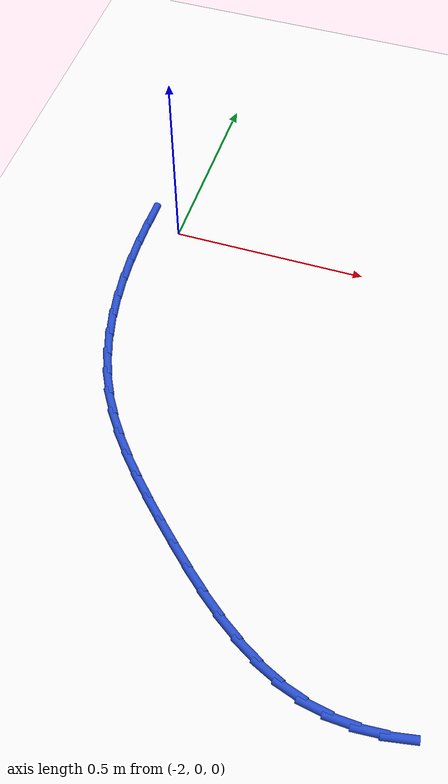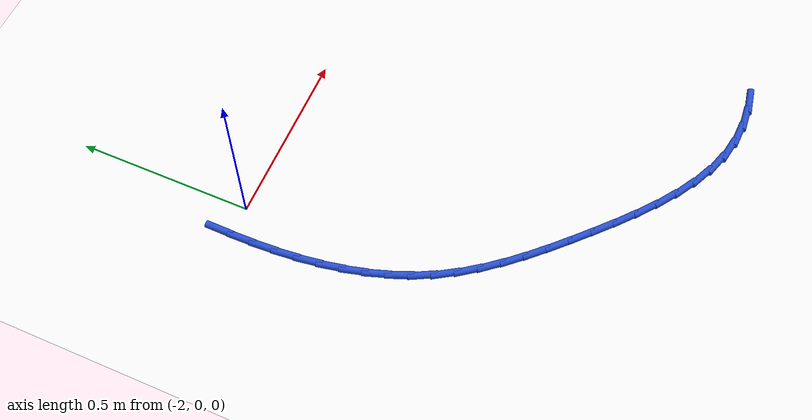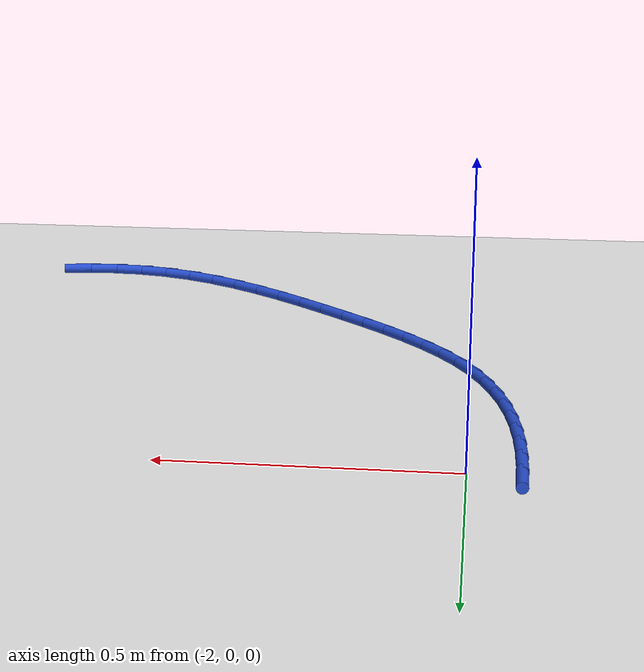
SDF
<sdf version="1.6">
 <world name="default">
  <model name="ground_plane">
   <static>1</static>
   <link name="link">
    <collision name="collision">
     <geometry><plane><normal>0 0 1</normal><size>100 100</size></plane></geometry>
     <surface><friction><ode><mu>100</mu><mu2>50</mu2></ode></friction></surface>
    </collision>
    <visual name="visual">
     <cast_shadows>0</cast_shadows>
     <geometry><plane><normal>0 0 1</normal><size>100 100</size></plane></geometry>
     <material>
      <script><uri>file://media/materials/scripts/gazebo.material</uri><name>Gazebo/WhiteGlow</name></script>
     </material>
    </visual>
   </link>
  </model>
  <model name="line">
   <link name="link_56">
    <pose>-2.0864020378395884 0.03379474475702978 0.01 0 1.57 1.5607957673540584</pose>
    <collision name="collision">
     <geometry><cylinder><radius>0.01</radius><length>0.08</length></cylinder></geometry>
    </collision>
    <visual name="visual">
     <material>
      <script><name>Gazebo/Blue</name><uri>file://media/materials/scripts/gazebo.material</uri></script>
     </material>
     <geometry><cylinder><radius>0.01</radius><length>0.08</length></cylinder></geometry>
    </visual>
   </link>
   <link name="link_57">
    <pose>-2.0870570276213884 -0.03169838591165594 0.01 0 1.57 -1.5506694462130841</pose>
    <collision name="collision">
     <geometry><cylinder><radius>0.01</radius><length>0.08</length></cylinder></geometry>
    </collision>
    <visual name="visual">
     <material>
      <script><name>Gazebo/Blue</name><uri>file://media/materials/scripts/gazebo.material</uri></script>
     </material>
     <geometry><cylinder><radius>0.01</radius><length>0.08</length></cylinder></geometry>
    </visual>
   </link>
   <link name="link_58">
    <pose>-2.085754062503926 -0.09642720305056046 0.01 0 1.57 -1.5149447673506946</pose>
    <collision name="collision">
     <geometry><cylinder><radius>0.01</radius><length>0.08</length></cylinder></geometry>
    </collision>
    <visual name="visual">
     <material>
      <script><name>Gazebo/Blue</name><uri>file://media/materials/scripts/gazebo.material</uri></script>
     </material>
     <geometry><cylinder><radius>0.01</radius><length>0.08</length></cylinder></geometry>
    </visual>
   </link>
   <link name="link_59">
    <pose>-2.082186165023832 -0.16024255302392093 0.01 0 1.57 -1.4732654751292809</pose>
    <collision name="collision">
     <geometry><cylinder><radius>0.01</radius><length>0.08</length></cylinder></geometry>
    </collision>
    <visual name="visual">
     <material>
      <script><name>Gazebo/Blue</name><uri>file://media/materials/scripts/gazebo.material</uri></script>
     </material>
     <geometry><cylinder><radius>0.01</radius><length>0.08</length></cylinder></geometry>
    </visual>
   </link>
   <link name="link_60">
    <pose>-2.076046357717737 -0.22299528219597156 0.01 0 1.57 -1.4252842629435871</pose>
    <collision name="collision">
     <geometry><cylinder><radius>0.01</radius><length>0.08</length></cylinder></geometry>
    </collision>
    <visual name="visual">
     <material>
      <script><name>Gazebo/Blue</name><uri>file://media/materials/scripts/gazebo.material</uri></script>
     </material>
     <geometry><cylinder><radius>0.01</radius><length>0.08</length></cylinder></geometry>
    </visual>
   </link>
   <link name="link_61">
    <pose>-2.0670276631222726 -0.28453623693094965 0.01 0 1.57 -1.3707091175914576</pose>
    <collision name="collision">
     <geometry><cylinder><radius>0.01</radius><length>0.08</length></cylinder></geometry>
    </collision>
    <visual name="visual">
     <material>
      <script><name>Gazebo/Blue</name><uri>file://media/materials/scripts/gazebo.material</uri></script>
     </material>
     <geometry><cylinder><radius>0.01</radius><length>0.08</length></cylinder></geometry>
    </visual>
   </link>
   <link name="link_62">
    <pose>-2.0548231037740696 -0.3447162635930891 0.01 0 1.57 -1.3093653273493706</pose>
    <collision name="collision">
     <geometry><cylinder><radius>0.01</radius><length>0.08</length></cylinder></geometry>
    </collision>
    <visual name="visual">
     <material>
      <script><name>Gazebo/Blue</name><uri>file://media/materials/scripts/gazebo.material</uri></script>
     </material>
     <geometry><cylinder><radius>0.01</radius><length>0.08</length></cylinder></geometry>
    </visual>
   </link>
   <link name="link_63">
    <pose>-2.039125702209758 -0.4033862085466275 0.01 0 1.57 -1.2412730890937522</pose>
    <collision name="collision">
     <geometry><cylinder><radius>0.01</radius><length>0.08</length></cylinder></geometry>
    </collision>
    <visual name="visual">
     <material>
      <script><name>Gazebo/Blue</name><uri>file://media/materials/scripts/gazebo.material</uri></script>
     </material>
     <geometry><cylinder><radius>0.01</radius><length>0.08</length></cylinder></geometry>
    </visual>
   </link>
   <link name="link_64">
    <pose>-2.019628480965971 -0.46039691815579886 0.01 0 1.57 -1.166733083043959</pose>
    <collision name="collision">
     <geometry><cylinder><radius>0.01</radius><length>0.08</length></cylinder></geometry>
    </collision>
    <visual name="visual">
     <material>
      <script><name>Gazebo/Blue</name><uri>file://media/materials/scripts/gazebo.material</uri></script>
     </material>
     <geometry><cylinder><radius>0.01</radius><length>0.08</length></cylinder></geometry>
    </visual>
   </link>
   <link name="link_65">
    <pose>-1.996024462579338 -0.5155992387848396 0.01 0 1.57 -1.0864331989604739</pose>
    <collision name="collision">
     <geometry><cylinder><radius>0.01</radius><length>0.08</length></cylinder></geometry>
    </collision>
    <visual name="visual">
     <material>
      <script><name>Gazebo/Blue</name><uri>file://media/materials/scripts/gazebo.material</uri></script>
     </material>
     <geometry><cylinder><radius>0.01</radius><length>0.08</length></cylinder></geometry>
    </visual>
   </link>
   <link name="link_66">
    <pose>-1.9680082539061314 -0.5688448656162327 0.01 0 1.57 -1.0061747143979942</pose>
    <collision name="collision">
     <geometry><cylinder><radius>0.01</radius><length>0.08</length></cylinder></geometry>
    </collision>
    <visual name="visual">
     <material>
      <script><name>Gazebo/Blue</name><uri>file://media/materials/scripts/gazebo.material</uri></script>
     </material>
     <geometry><cylinder><radius>0.01</radius><length>0.08</length></cylinder></geometry>
    </visual>
   </link>
   <link name="link_67">
    <pose>-1.935529051321462 -0.6201218932200893 0.01 0 1.57 -0.936730796238603</pose>
    <collision name="collision">
     <geometry><cylinder><radius>0.01</radius><length>0.08</length></cylinder></geometry>
    </collision>
    <visual name="visual">
     <material>
      <script><name>Gazebo/Blue</name><uri>file://media/materials/scripts/gazebo.material</uri></script>
     </material>
     <geometry><cylinder><radius>0.01</radius><length>0.08</length></cylinder></geometry>
    </visual>
   </link>
   <link name="link_68">
    <pose>-1.8990685597765844 -0.6697037140217771 0.01 0 1.57 -0.8793728732987515</pose>
    <collision name="collision">
     <geometry><cylinder><radius>0.01</radius><length>0.08</length></cylinder></geometry>
    </collision>
    <visual name="visual">
     <material>
      <script><name>Gazebo/Blue</name><uri>file://media/materials/scripts/gazebo.material</uri></script>
     </material>
     <geometry><cylinder><radius>0.01</radius><length>0.08</length></cylinder></geometry>
    </visual>
   </link>
   <link name="link_69">
    <pose>-1.8591753350477884 -0.7178995365778164 0.01 0 1.57 -0.8336565824900359</pose>
    <collision name="collision">
     <geometry><cylinder><radius>0.01</radius><length>0.08</length></cylinder></geometry>
    </collision>
    <visual name="visual">
     <material>
      <script><name>Gazebo/Blue</name><uri>file://media/materials/scripts/gazebo.material</uri></script>
     </material>
     <geometry><cylinder><radius>0.01</radius><length>0.08</length></cylinder></geometry>
    </visual>
   </link>
   <link name="link_70">
    <pose>-1.8163979329113649 -0.76501856944473 0.01 0 1.57 -0.7989373247735595</pose>
    <collision name="collision">
     <geometry><cylinder><radius>0.01</radius><length>0.08</length></cylinder></geometry>
    </collision>
    <visual name="visual">
     <material>
      <script><name>Gazebo/Blue</name><uri>file://media/materials/scripts/gazebo.material</uri></script>
     </material>
     <geometry><cylinder><radius>0.01</radius><length>0.08</length></cylinder></geometry>
    </visual>
   </link>
   <link name="link_71">
    <pose>-1.771284909143604 -0.8113700211790384 0.01 0 1.57 -0.7745463846661782</pose>
    <collision name="collision">
     <geometry><cylinder><radius>0.01</radius><length>0.08</length></cylinder></geometry>
    </collision>
    <visual name="visual">
     <material>
      <script><name>Gazebo/Blue</name><uri>file://media/materials/scripts/gazebo.material</uri></script>
     </material>
     <geometry><cylinder><radius>0.01</radius><length>0.08</length></cylinder></geometry>
    </visual>
   </link>
   <link name="link_72">
    <pose>-1.7243848195207956 -0.8572631003372642 0.01 0 1.57 -0.7590501194690988</pose>
    <collision name="collision">
     <geometry><cylinder><radius>0.01</radius><length>0.08</length></cylinder></geometry>
    </collision>
    <visual name="visual">
     <material>
      <script><name>Gazebo/Blue</name><uri>file://media/materials/scripts/gazebo.material</uri></script>
     </material>
     <geometry><cylinder><radius>0.01</radius><length>0.08</length></cylinder></geometry>
    </visual>
   </link>
   <link name="link_73">
    <pose>-1.6762226815656796 -0.9029518778702805 0.01 0 1.57 -0.7404358289195409</pose>
    <collision name="collision">
     <geometry><cylinder><radius>0.01</radius><length>0.08</length></cylinder></geometry>
    </collision>
    <visual name="visual">
     <material>
      <script><name>Gazebo/Blue</name><uri>file://media/materials/scripts/gazebo.material</uri></script>
     </material>
     <geometry><cylinder><radius>0.01</radius><length>0.08</length></cylinder></geometry>
    </visual>
   </link>
   <link name="link_74">
    <pose>-1.6270010259869083 -0.9479350096875554 0.01 0 1.57 -0.7098082720332256</pose>
    <collision name="collision">
     <geometry><cylinder><radius>0.01</radius><length>0.08</length></cylinder></geometry>
    </collision>
    <visual name="visual">
     <material>
      <script><name>Gazebo/Blue</name><uri>file://media/materials/scripts/gazebo.material</uri></script>
     </material>
     <geometry><cylinder><radius>0.01</radius><length>0.08</length></cylinder></geometry>
    </visual>
   </link>
   <link name="link_75">
    <pose>-1.576688503353909 -0.9911632949573094 0.01 0 1.57 -0.6659071148183957</pose>
    <collision name="collision">
     <geometry><cylinder><radius>0.01</radius><length>0.08</length></cylinder></geometry>
    </collision>
    <visual name="visual">
     <material>
      <script><name>Gazebo/Blue</name><uri>file://media/materials/scripts/gazebo.material</uri></script>
     </material>
     <geometry><cylinder><radius>0.01</radius><length>0.08</length></cylinder></geometry>
    </visual>
   </link>
   <link name="link_76">
    <pose>-1.5252485226303494 -1.0315752545540204 0.01 0 1.57 -0.6070335571461302</pose>
    <collision name="collision">
     <geometry><cylinder><radius>0.01</radius><length>0.08</length></cylinder></geometry>
    </collision>
    <visual name="visual">
     <material>
      <script><name>Gazebo/Blue</name><uri>file://media/materials/scripts/gazebo.material</uri></script>
     </material>
     <geometry><cylinder><radius>0.01</radius><length>0.08</length></cylinder></geometry>
    </visual>
   </link>
   <link name="link_77">
    <pose>-1.4726444927798965 -1.068109409352165 0.01 0 1.57 -0.5309651904711027</pose>
    <collision name="collision">
     <geometry><cylinder><radius>0.01</radius><length>0.08</length></cylinder></geometry>
    </collision>
    <visual name="visual">
     <material>
      <script><name>Gazebo/Blue</name><uri>file://media/materials/scripts/gazebo.material</uri></script>
     </material>
     <geometry><cylinder><radius>0.01</radius><length>0.08</length></cylinder></geometry>
    </visual>
   </link>
   <link name="link_78">
    <pose>-1.4188398227662153 -1.0997042802262198 0.01 0 1.57 -0.4352520525720913</pose>
    <collision name="collision">
     <geometry><cylinder><radius>0.01</radius><length>0.08</length></cylinder></geometry>
    </collision>
    <visual name="visual">
     <material>
      <script><name>Gazebo/Blue</name><uri>file://media/materials/scripts/gazebo.material</uri></script>
     </material>
     <geometry><cylinder><radius>0.01</radius><length>0.08</length></cylinder></geometry>
    </visual>
   </link>
   <link name="link_79">
    <pose>-1.3637979215529745 -1.125298388050661 0.01 0 1.57 -0.317909469147726</pose>
    <collision name="collision">
     <geometry><cylinder><radius>0.01</radius><length>0.08</length></cylinder></geometry>
    </collision>
    <visual name="visual">
     <material>
      <script><name>Gazebo/Blue</name><uri>file://media/materials/scripts/gazebo.material</uri></script>
     </material>
     <geometry><cylinder><radius>0.01</radius><length>0.08</length></cylinder></geometry>
    </visual>
   </link>
   <link name="link_80">
    <pose>-1.3074821981038394 -1.1438302536999667 0.01 0 1.57 -0.18161661545595123</pose>
    <collision name="collision">
     <geometry><cylinder><radius>0.01</radius><length>0.08</length></cylinder></geometry>
    </collision>
    <visual name="visual">
     <material>
      <script><name>Gazebo/Blue</name><uri>file://media/materials/scripts/gazebo.material</uri></script>
     </material>
     <geometry><cylinder><radius>0.01</radius><length>0.08</length></cylinder></geometry>
    </visual>
   </link>
   <link name="link_81">
    <pose>-1.2498810914639822 -1.1544081306148513 0.01 0 1.57 -0.04860683710352313</pose>
    <collision name="collision">
     <geometry><cylinder><radius>0.01</radius><length>0.08</length></cylinder></geometry>
    </collision>
    <visual name="visual">
     <material>
      <script><name>Gazebo/Blue</name><uri>file://media/materials/scripts/gazebo.material</uri></script>
     </material>
     <geometry><cylinder><radius>0.01</radius><length>0.08</length></cylinder></geometry>
    </visual>
   </link>
   <link name="link_82">
    <pose>-1.19114892621263 -1.1572651657923168 0.01 0 1.57 0.06985517771267084</pose>
    <collision name="collision">
     <geometry><cylinder><radius>0.01</radius><length>0.08</length></cylinder></geometry>
    </collision>
    <visual name="visual">
     <material>
      <script><name>Gazebo/Blue</name><uri>file://media/materials/scripts/gazebo.material</uri></script>
     </material>
     <geometry><cylinder><radius>0.01</radius><length>0.08</length></cylinder></geometry>
    </visual>
   </link>
   <link name="link_83">
    <pose>-1.1315075093218134 -1.1530921139964283 0.01 0 1.57 0.1724983109636099</pose>
    <collision name="collision">
     <geometry><cylinder><radius>0.01</radius><length>0.08</length></cylinder></geometry>
    </collision>
    <visual name="visual">
     <material>
      <script><name>Gazebo/Blue</name><uri>file://media/materials/scripts/gazebo.material</uri></script>
     </material>
     <geometry><cylinder><radius>0.01</radius><length>0.08</length></cylinder></geometry>
    </visual>
   </link>
  </model>
 </world>
</sdf>
